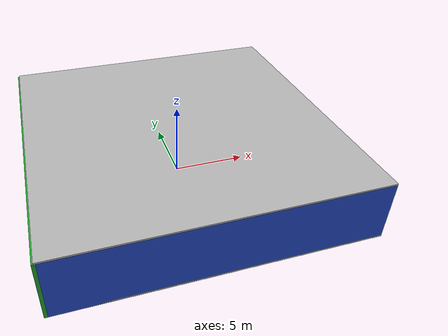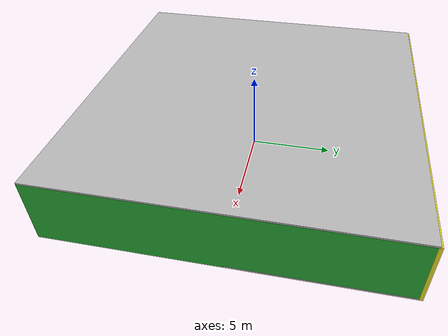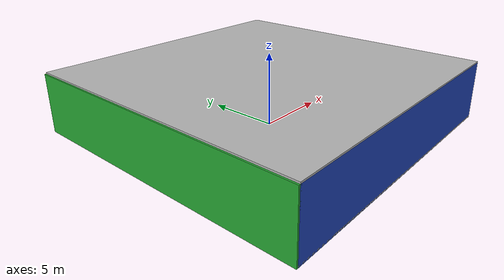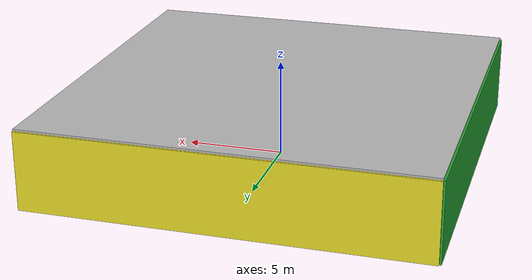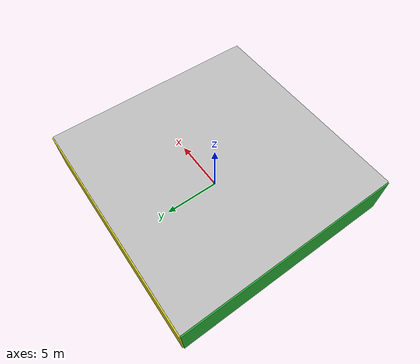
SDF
<sdf version="1.4">
 <world name="default">
  <physics type="ode">
   <max_step_size>0.001</max_step_size>
   <real_time_factor>1</real_time_factor>
   <real_time_update_rate>1000</real_time_update_rate>
   <gravity>0 0 -9.8</gravity>
  </physics>
  <scene><ambient>0.4 0.4 0.4 1</ambient><background>0.7 0.7 0.7 1</background><shadows>1</shadows></scene>
  <model name="Surrounding">
   <static>1</static>
   <link name="Ceiling">
    <collision name="Ceiling_Collision"><geometry><box><size>20 20 0.1</size></box></geometry></collision>
    <visual name="Ceiling_Visual">
     <geometry><box><size>20 20 0.1</size></box></geometry>
     <material>
      <script><uri>file://media/materials/scripts/gazebo.material</uri><name>Gazebo/LightOn</name></script>
     </material>
    </visual>
    <pose>0 0 4.05 0 0 0</pose>
   </link>
   <link name="Wall_South">
    <collision name="Wall_South_Collision">
     <geometry><box><size>20 0 4</size></box></geometry>
     <pose>0 0 2 0 -0 0</pose>
    </collision>
    <visual name="Wall_South_Visual">
     <pose>0 0 2 0 -0 0</pose>
     <geometry><box><size>20 0 4</size></box></geometry>
     <material>
      <script><uri>file://media/materials/scripts/gazebo.material</uri><name>Gazebo/BlueLaser</name></script>
     </material>
    </visual>
    <velocity_decay><linear>0</linear><angular>0</angular></velocity_decay>
    <pose>0 -10 0 0 -0 0</pose>
   </link>
   <link name="Wall_East">
    <collision name="Wall_21_Collision">
     <geometry><box><size>20 0 4</size></box></geometry>
     <pose>0 0 2 0 -0 0</pose>
    </collision>
    <visual name="Wall_21_Visual">
     <pose>0 0 2 0 -0 0</pose>
     <geometry><box><size>20 0 4</size></box></geometry>
     <material>
      <script><uri>file://media/materials/scripts/gazebo.material</uri><name>Gazebo/GreenGlow</name></script>
     </material>
    </visual>
    <velocity_decay><linear>0</linear><angular>0</angular></velocity_decay>
    <pose>10 0 0 0 -0 1.5708</pose>
   </link>
   <link name="Wall_North">
    <collision name="Wall_22_Collision">
     <geometry><box><size>20 0.2 4</size></box></geometry>
     <pose>0 0 2 0 -0 0</pose>
    </collision>
    <visual name="Wall_22_Visual">
     <pose>0 0 2 0 -0 0</pose>
     <geometry><box><size>20 0.2 4</size></box></geometry>
     <material>
      <script><uri>file://media/materials/scripts/gazebo.material</uri><name>Gazebo/Yellow</name></script>
     </material>
    </visual>
    <velocity_decay><linear>0</linear><angular>0</angular></velocity_decay>
    <pose>0 10 0 0 -0 0</pose>
   </link>
   <link name="Wall_West">
    <collision name="Wall_23_Collision">
     <geometry><box><size>20 0.2 4</size></box></geometry>
     <pose>0 0 2 0 -0 0</pose>
    </collision>
    <visual name="Wall_23_Visual">
     <pose>0 0 2 0 -0 0</pose>
     <geometry><box><size>20 0.2 4</size></box></geometry>
     <material>
      <script><uri>file://media/materials/scripts/gazebo.material</uri><name>Gazebo/GreenGlow</name></script>
     </material>
    </visual>
    <velocity_decay><linear>0</linear><angular>0</angular></velocity_decay>
    <pose>-10 0 0 0 0 -1.5708</pose>
   </link>
   <link name="Ground_link">
    <collision name="collision">
     <pose>0 0 .05 0 -0 0</pose>
     <geometry><box><size>20 20 0.1</size></box></geometry>
    </collision>
    <visual name="visual">
     <pose>0 0 .05 0 -0 0</pose>
     <geometry><box><size>20 20 0.1</size></box></geometry>
     <material>
      <script><uri>file://media/materials/scripts/gazebo.material</uri><name>Gazebo/Pioneer2Body</name></script>
     </material>
    </visual>
   </link>
   <static>1</static>
  </model>
  <spherical_coordinates>
   <surface_model>EARTH_WGS84</surface_model>
   <latitude_deg>0</latitude_deg>
   <longitude_deg>0</longitude_deg>
   <elevation>0</elevation>
   <heading_deg>0</heading_deg>
  </spherical_coordinates>
  <light name="lightball_0" type="diffuse">
   <diffuse>0.8 0.8 0.8 1</diffuse>
   <specular>0.2 0.2 0.2 1</specular>
   <attenuation>
    <range>100</range>
    <constant>0.7</constant>
    <linear>0.01</linear>
    <quadratic>0.001</quadratic>
   </attenuation>
   <direction>-0.5 0.1 -0.9</direction>
   <pose>-1.46176506042 -3.91513656612 0.765155065371 0 0 0</pose>
  </light>
  <light name="lightball_1" type="diffuse">
   <diffuse>0.8 0.8 0.8 1</diffuse>
   <specular>0.2 0.2 0.2 1</specular>
   <attenuation>
    <range>100</range>
    <constant>0.7</constant>
    <linear>0.01</linear>
    <quadratic>0.001</quadratic>
   </attenuation>
   <direction>-0.5 0.1 -0.9</direction>
   <pose>-6.33410593203 5.90884215948 3.06796217033 0 0 0</pose>
  </light>
  <light name="lightball_2" type="diffuse">
   <diffuse>0.8 0.8 0.8 1</diffuse>
   <specular>0.2 0.2 0.2 1</specular>
   <attenuation>
    <range>100</range>
    <constant>0.7</constant>
    <linear>0.01</linear>
    <quadratic>0.001</quadratic>
   </attenuation>
   <direction>-0.5 0.1 -0.9</direction>
   <pose>-2.42406753377 8.62299608198 2.85392839219 0 0 0</pose>
  </light>
  <light name="lightball_3" type="diffuse">
   <diffuse>0.8 0.8 0.8 1</diffuse>
   <specular>0.2 0.2 0.2 1</specular>
   <attenuation>
    <range>100</range>
    <constant>0.7</constant>
    <linear>0.01</linear>
    <quadratic>0.001</quadratic>
   </attenuation>
   <direction>-0.5 0.1 -0.9</direction>
   <pose>5.89803872807 -1.40065444631 1.43822200417 0 0 0</pose>
  </light>
  <light name="lightball_4" type="diffuse">
   <diffuse>0.8 0.8 0.8 1</diffuse>
   <specular>0.2 0.2 0.2 1</specular>
   <attenuation>
    <range>100</range>
    <constant>0.7</constant>
    <linear>0.01</linear>
    <quadratic>0.001</quadratic>
   </attenuation>
   <direction>-0.5 0.1 -0.9</direction>
   <pose>-5.82325949473 8.53134936075 3.64113024365 0 0 0</pose>
  </light>
  <light name="lightball_5" type="diffuse">
   <diffuse>0.8 0.8 0.8 1</diffuse>
   <specular>0.2 0.2 0.2 1</specular>
   <attenuation>
    <range>100</range>
    <constant>0.7</constant>
    <linear>0.01</linear>
    <quadratic>0.001</quadratic>
   </attenuation>
   <direction>-0.5 0.1 -0.9</direction>
   <pose>4.40047059712 4.77645498704 1.66521388701 0 0 0</pose>
  </light>
  <light name="lightball_6" type="diffuse">
   <diffuse>0.8 0.8 0.8 1</diffuse>
   <specular>0.2 0.2 0.2 1</specular>
   <attenuation>
    <range>100</range>
    <constant>0.7</constant>
    <linear>0.01</linear>
    <quadratic>0.001</quadratic>
   </attenuation>
   <direction>-0.5 0.1 -0.9</direction>
   <pose>0.795865363663 9.06508397336 0.639969553645 0 0 0</pose>
  </light>
  <light name="lightball_7" type="diffuse">
   <diffuse>0.8 0.8 0.8 1</diffuse>
   <specular>0.2 0.2 0.2 1</specular>
   <attenuation>
    <range>100</range>
    <constant>0.7</constant>
    <linear>0.01</linear>
    <quadratic>0.001</quadratic>
   </attenuation>
   <direction>-0.5 0.1 -0.9</direction>
   <pose>5.9767634957 -1.6666634917 2.40241177891 0 0 0</pose>
  </light>
  <include><uri>model://table</uri><pose>-1.57809919054 -5.0032034286 0 0 0 0.885167557224</pose></include>
  <include>
   <uri>model://construction_cone</uri>
   <pose>1.36103048911 -6.98473066981 0 0 0 1.61932571088</pose>
  </include>
  <include><uri>model://cabinet</uri><pose>1.35482598757 4.00837309394 0 0 0 0.906475305618</pose></include>
  <include><uri>model://cabinet</uri><pose>0.724607641471 6.95007172637 0 0 0 0.270093782744</pose></include>
  <include>
   <uri>model://robocup_3Dsim_goal</uri>
   <pose>7.77323343592 -1.52322662728 0 0 0 1.29806123886</pose>
  </include>
  <include>
   <uri>model://construction_cone</uri>
   <pose>7.72154790476 1.0556968244 0 0 0 0.580970154842</pose>
  </include>
 </world>
</sdf>

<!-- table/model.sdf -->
<sdf version="1.5">
  <model name="table">
    <static>true</static>
    <link name="link">
      <collision name="surface">
        <pose>0 0 1.0 0 0 0</pose>
        <geometry>
          <box>
            <size>1.5 0.8 0.03</size>
          </box>
        </geometry>
        <surface>
          <friction>
            <ode>
              <mu>0.6</mu>
              <mu2>0.6</mu2>
            </ode>
          </friction>
        </surface>
      </collision>
      <visual name="visual1">
        <pose>0 0 1.0 0 0 0</pose>
        <geometry>
          <box>
            <size>1.5 0.8 0.03</size>
          </box>
        </geometry>
        <material>
          <script>
            <uri>model://media/materials/scripts/gazebo.material</uri>
            <name>Gazebo/Wood</name>
          </script>
        </material>
      </visual>
      <collision name="front_left_leg">
        <pose>0.68 0.38 0.5 0 0 0</pose>
        <geometry>
          <cylinder>
            <radius>0.02</radius>
            <length>1.0</length>
          </cylinder>
        </geometry>
      </collision>
      <visual name="front_left_leg">
        <pose>0.68 0.38 0.5 0 0 0</pose>
        <geometry>
          <cylinder>
            <radius>0.02</radius>
            <length>1.0</length>
          </cylinder>
        </geometry>
        <material>
          <script>
            <uri>model://media/materials/scripts/gazebo.material</uri>
            <name>Gazebo/Grey</name>
          </script>
        </material>
      </visual>
      <collision name="front_right_leg">
        <pose>0.68 -0.38 0.5 0 0 0</pose>
        <geometry>
          <cylinder>
            <radius>0.02</radius>
            <length>1.0</length>
          </cylinder>
        </geometry>
      </collision>
      <visual name="front_right_leg">
        <pose>0.68 -0.38 0.5 0 0 0</pose>
        <geometry>
          <cylinder>
            <radius>0.02</radius>
            <length>1.0</length>
          </cylinder>
        </geometry>
        <material>
          <script>
            <uri>model://media/materials/scripts/gazebo.material</uri>
            <name>Gazebo/Grey</name>
          </script>
        </material>
      </visual>
      <collision name="back_right_leg">
        <pose>-0.68 -0.38 0.5 0 0 0</pose>
        <geometry>
          <cylinder>
            <radius>0.02</radius>
            <length>1.0</length>
          </cylinder>
        </geometry>
      </collision>
      <visual name="back_right_leg">
        <pose>-0.68 -0.38 0.5 0 0 0</pose>
        <geometry>
          <cylinder>
            <radius>0.02</radius>
            <length>1.0</length>
          </cylinder>
        </geometry>
        <material>
          <script>
            <uri>model://media/materials/scripts/gazebo.material</uri>
            <name>Gazebo/Grey</name>
          </script>
        </material>
      </visual>
      <collision name="back_left_leg">
        <pose>-0.68 0.38 0.5 0 0 0</pose>
        <geometry>
          <cylinder>
            <radius>0.02</radius>
            <length>1.0</length>
          </cylinder>
        </geometry>
      </collision>
      <visual name="back_left_leg">
        <pose>-0.68 0.38 0.5 0 0 0</pose>
        <geometry>
          <cylinder>
            <radius>0.02</radius>
            <length>1.0</length>
          </cylinder>
        </geometry>
        <material>
          <script>
            <uri>model://media/materials/scripts/gazebo.material</uri>
            <name>Gazebo/Grey</name>
          </script>
        </material>
      </visual>
    </link>
  </model>
</sdf>

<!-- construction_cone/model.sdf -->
<sdf version="1.5">
  <model name="Construction Cone">
    <link name="link">
      <collision name="collision">
        <geometry>
          <mesh>
            <scale>10 10 10</scale>
            <uri>file://isr-testbed/construction_cone/meshes/construction_cone.dae</uri>
          </mesh>
        </geometry>
      </collision>
      <visual name="visual">
        <geometry>
          <mesh>
            <scale>10 10 10</scale>
            <uri>file://isr-testbed/construction_cone/meshes/construction_cone.dae</uri>
          </mesh>
        </geometry>
      </visual>
    </link>
  </model>
</sdf>

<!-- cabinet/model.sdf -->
<sdf version="1.5">
  <model name="cabinet">
    <static>true</static>
    <link name="cabinet_bottom_plate">
      <inertial>
        <pose>0 0 -1 0 0 0</pose>
        <inertia>
          <ixx>2.050000</ixx>
          <ixy>0</ixy>
          <ixz>0</ixz>
          <iyy>2.050000</iyy>
          <iyz>0</iyz>
          <izz>2.050000</izz>
        </inertia>
        <mass>25.000000</mass>
      </inertial>
      <collision name="cabinet_bottom_plate_geom">
        <pose>0 0 0.010000 0 0 0</pose>
        <geometry>
          <box>
            <size>0.450000 0.450000 0.020000</size>
          </box>
        </geometry>
      </collision>
      <visual name="cabinet_bottom_plate_geom_visual">
        <pose>0 0 0.010000 0 0 0</pose>
        <geometry>
          <box>
            <size>0.450000 0.450000 0.020000</size>
          </box>
        </geometry>
        <material>
          <script>
            <uri>model://media/materials/scripts/gazebo.material</uri>
            <name>Gazebo/Wood</name>
          </script>
        </material>
      </visual>
      <collision name="cabinet_bottom_plate_geom_cabinet_back_plate">
        <pose>0.235000 0 0.510000 0 0 0</pose>
        <geometry>
          <box>
            <size>0.020000 0.450000 1.020000</size>
          </box>
        </geometry>
      </collision>
      <visual name="cabinet_bottom_plate_geom_cabinet_back_plate_visual">
        <pose>0.235000 0 0.510000 0 0 0</pose>
        <geometry>
          <box>
            <size>0.020000 0.450000 1.020000</size>
          </box>
        </geometry>
        <material>
          <script>
            <uri>model://media/materials/scripts/gazebo.material</uri>
            <name>Gazebo/Wood</name>
          </script>
        </material>
      </visual>
      <collision name="cabinet_bottom_plate_geom_cabinet_left_plate">
        <pose>0 0.235000 0.510000 0 0 0</pose>
        <geometry>
          <box>
            <size>0.450000 0.020000 1.020000</size>
          </box>
        </geometry>
      </collision>
      <visual name="cabinet_bottom_plate_geom_cabinet_left_plate_visual">
        <pose>0 0.235000 0.510000 0 0 0</pose>
        <geometry>
          <box>
            <size>0.450000 0.020000 1.020000</size>
          </box>
        </geometry>
        <material>
          <script>
            <uri>model://media/materials/scripts/gazebo.material</uri>
            <name>Gazebo/Wood</name>
          </script>
        </material>
      </visual>
      <collision name="cabinet_bottom_plate_geom_cabinet_middle_plate">
        <pose>0 0 0.510000 0 0 0</pose>
        <geometry>
          <box>
            <size>0.450000 0.450000 0.020000</size>
          </box>
        </geometry>
      </collision>
      <visual name="cabinet_bottom_plate_geom_cabinet_middle_plate_visual">
        <pose>0 0 0.510000 0 0 0</pose>
        <geometry>
          <box>
            <size>0.450000 0.450000 0.020000</size>
          </box>
        </geometry>
        <material>
          <script>
            <uri>model://media/materials/scripts/gazebo.material</uri>
            <name>Gazebo/Wood</name>
          </script>
        </material>
      </visual>
      <collision name="cabinet_bottom_plate_geom_cabinet_right_plate">
        <pose>0 -0.235000 0.510000 0 0 0</pose>
        <geometry>
          <box>
            <size>0.450000 0.020000 1.020000</size>
          </box>
        </geometry>
      </collision>
      <visual name="cabinet_bottom_plate_geom_cabinet_right_plate_visual">
        <pose>0 -0.235000 0.510000 0 0 0</pose>
        <geometry>
          <box>
            <size>0.450000 0.020000 1.020000</size>
          </box>
        </geometry>
        <material>
          <script>
            <uri>model://media/materials/scripts/gazebo.material</uri>
            <name>Gazebo/Wood</name>
          </script>
        </material>
      </visual>
      <collision name="cabinet_bottom_plate_geom_cabinet_top_plate">
        <pose>0 0 1.010000 0 0 0</pose>
        <geometry>
          <box>
            <size>0.450000 0.450000 0.020000</size>
          </box>
        </geometry>
      </collision>
      <visual name="cabinet_bottom_plate_geom_cabinet_top_plate_visual">
        <pose>0 0 1.010000 0 0 0</pose>
        <geometry>
          <box>
            <size>0.450000 0.450000 0.020000</size>
          </box>
        </geometry>
        <material>
          <script>
            <uri>model://media/materials/scripts/gazebo.material</uri>
            <name>Gazebo/Wood</name>
          </script>
        </material>
      </visual>
    </link>
  </model>
</sdf>

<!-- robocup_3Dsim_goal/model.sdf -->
<sdf version="1.5">
  <model name="robocup_3d_goal">
    <static>true</static>
    <link name="left_post">
      <pose>0 1.05 0.45 0 0 0</pose>
      <collision name="collision">
        <geometry>
          <cylinder>
            <radius>0.05</radius>
            <length>0.9</length>
          </cylinder>
        </geometry>
      </collision>
      <visual name="visual">
        <geometry>
          <cylinder>
            <radius>0.05</radius>
            <length>0.9</length>
          </cylinder>
        </geometry>
        <material>
          <script>
            <uri>file://media/materials/scripts/gazebo.material</uri>
            <name>Gazebo/ZincYellow</name>
          </script>
        </material>
      </visual>
    </link>
    <link name="left_support_horiz_lower">
      <pose>0.30 1.05 0.01 0 0 0</pose>
      <collision name="collision">
        <geometry>
          <box>
            <size>0.50 0.02 0.02</size>
          </box>
        </geometry>
      </collision>
      <visual name="visual">
        <geometry>
          <box>
            <size>0.50 0.02 0.02</size>
          </box>
        </geometry>
        <material>
          <script>
            <uri>file://media/materials/scripts/gazebo.material</uri>
            <name>Gazebo/White</name>
          </script>
        </material>
      </visual>
    </link>
    <link name="left_support_horiz_upper">
      <pose>0.30 1.05 0.79 0 0 0</pose>
      <collision name="collision">
        <geometry>
          <box>
            <size>0.50 0.02 0.02</size>
          </box>
        </geometry>
      </collision>
      <visual name="visual">
        <geometry>
          <box>
            <size>0.50 0.02 0.02</size>
          </box>
        </geometry>
        <material>
          <script>
            <uri>file://media/materials/scripts/gazebo.material</uri>
            <name>Gazebo/White</name>
          </script>
        </material>
      </visual>
    </link>
    <link name="left_support_vertical">
      <pose>0.56 1.05 0.4 0 1.5708 0</pose>
      <collision name="collision">
        <geometry>
          <box>
            <size>0.80 0.02 0.02</size>
          </box>
        </geometry>
      </collision>
      <visual name="visual">
        <geometry>
          <box>
            <size>0.80 0.02 0.02</size>
          </box>
        </geometry>
        <material>
          <script>
            <uri>file://media/materials/scripts/gazebo.material</uri>
            <name>Gazebo/White</name>
          </script>
        </material>
      </visual>
    </link>
    <link name="right_support_horiz_lower">
      <pose>0.30 -1.05 0.01 0 0 0</pose>
      <collision name="collision">
        <geometry>
          <box>
            <size>0.50 0.02 0.02</size>
          </box>
        </geometry>
      </collision>
      <visual name="visual">
        <geometry>
          <box>
            <size>0.50 0.02 0.02</size>
          </box>
        </geometry>
        <material>
          <script>
            <uri>file://media/materials/scripts/gazebo.material</uri>
            <name>Gazebo/White</name>
          </script>
        </material>
      </visual>
    </link>
    <link name="right_support_horiz_upper">
      <pose>0.30 -1.05 0.79 0 0 0</pose>
      <collision name="collision">
        <geometry>
          <box>
            <size>0.50 0.02 0.02</size>
          </box>
        </geometry>
      </collision>
      <visual name="visual">
        <geometry>
          <box>
            <size>0.50 0.02 0.02</size>
          </box>
        </geometry>
        <material>
          <script>
            <uri>file://media/materials/scripts/gazebo.material</uri>
            <name>Gazebo/White</name>
          </script>
        </material>
      </visual>
    </link>
    <link name="right_support_vertical">
      <pose>0.56 -1.05 0.4 0 1.5708 0</pose>
      <collision name="collision">
        <geometry>
          <box>
            <size>0.80 0.02 0.02</size>
          </box>
        </geometry>
      </collision>
      <visual name="visual">
        <geometry>
          <box>
            <size>0.80 0.02 0.02</size>
          </box>
        </geometry>
        <material>
          <script>
            <uri>file://media/materials/scripts/gazebo.material</uri>
            <name>Gazebo/White</name>
          </script>
        </material>
      </visual>
    </link>
    <link name="center_support_horiz_lower">
      <pose>0.56 0 0.01 0 1.5708 0</pose>
      <collision name="collision">
        <geometry>
          <box>
            <size>0.02 2.08 0.02</size>
          </box>
        </geometry>
      </collision>
      <visual name="visual">
        <geometry>
          <box>
            <size>0.02 2.08 0.02</size>
          </box>
        </geometry>
        <material>
          <script>
            <uri>file://media/materials/scripts/gazebo.material</uri>
            <name>Gazebo/White</name>
          </script>
        </material>
      </visual>
    </link>
    <link name="center_support_horiz_upper">
      <pose>0.56 0 0.79 0 1.5708 0</pose>
      <collision name="collision">
        <geometry>
          <box>
            <size>0.02 2.08 0.02</size>
          </box>
        </geometry>
      </collision>
      <visual name="visual">
        <geometry>
          <box>
            <size>0.02 2.08 0.02</size>
          </box>
        </geometry>
        <material>
          <script>
            <uri>file://media/materials/scripts/gazebo.material</uri>
            <name>Gazebo/White</name>
          </script>
        </material>
      </visual>
    </link>
    <link name="right_post">
      <pose>0 -1.05 0.45 0 0 0</pose>
      <collision name="collision">
        <geometry>
          <cylinder>
            <radius>0.05</radius>
            <length>0.9</length>
          </cylinder>
        </geometry>
      </collision>
      <visual name="visual">
        <geometry>
          <cylinder>
            <radius>0.05</radius>
            <length>0.9</length>
          </cylinder>
        </geometry>
        <material>
          <script>
            <uri>file://media/materials/scripts/gazebo.material</uri>
            <name>Gazebo/ZincYellow</name>
          </script>
        </material>
      </visual>
    </link>
    <link name="crossbar">
      <pose>0 0 0.85 1.57 1.57 0</pose>
      <collision name="collision">
        <geometry>
          <cylinder>
            <radius>0.05</radius>
            <length>2.0</length>
          </cylinder>
        </geometry>
      </collision>
      <visual name="visual">
        <geometry>
          <cylinder>
            <radius>0.05</radius>
            <length>2.0</length>
          </cylinder>
        </geometry>
        <material>
          <script>
            <uri>file://media/materials/scripts/gazebo.material</uri>
            <name>Gazebo/ZincYellow</name>
          </script>
        </material>
      </visual>
    </link>
    <link name="center_net">
      <pose>0.56 0 0.40 0 0 0</pose>
      <collision name="collision">
        <geometry>
          <box>
            <size>0.01 2.1 0.80</size>
          </box>
        </geometry>
      </collision>
      <visual name="visual">
        <geometry>
          <box>
            <size>0.01 2.1 0.80</size>
          </box>
        </geometry>
        <material>
          <script>
            <uri>model://../model_source/models/robocup09_spl_field/materials/scripts/</uri>
            <uri>model://../model_source/models/robocup09_spl_field/materials/textures/</uri>
            <name>RoboCup/Net</name>
          </script>
        </material>
      </visual>
    </link>
    <link name="left_net">
      <pose>0.30 1.05 0.40 0 0 0</pose>
      <collision name="collision">
        <geometry>
          <box>
            <size>0.50 0.01 0.76</size>
          </box>
        </geometry>
      </collision>
      <visual name="visual">
        <geometry>
          <box>
            <size>0.50 0.01 0.76</size>
          </box>
        </geometry>
        <material>
          <script>
            <uri>model://../model_source/models/robocup09_spl_field/materials/scripts/</uri>
            <uri>model://../model_source/models/robocup09_spl_field/materials/textures/</uri>
            <name>RoboCup/Net</name>
          </script>
        </material>
      </visual>
    </link>
    <link name="right_net">
      <pose>0.30 -1.05 0.40 0 0 0</pose>
      <collision name="collision">
        <geometry>
          <box>
            <size>0.50 0.01 0.76</size>
          </box>
        </geometry>
      </collision>
      <visual name="visual">
        <geometry>
          <box>
            <size>0.50 0.01 0.76</size>
          </box>
        </geometry>
        <material>
          <script>
            <uri>model://../model_source/models/robocup09_spl_field/materials/scripts/</uri>
            <uri>model://../model_source/models/robocup09_spl_field/materials/textures/</uri>
            <name>RoboCup/Net</name>
          </script>
        </material>
      </visual>
    </link>
  </model>
</sdf>
